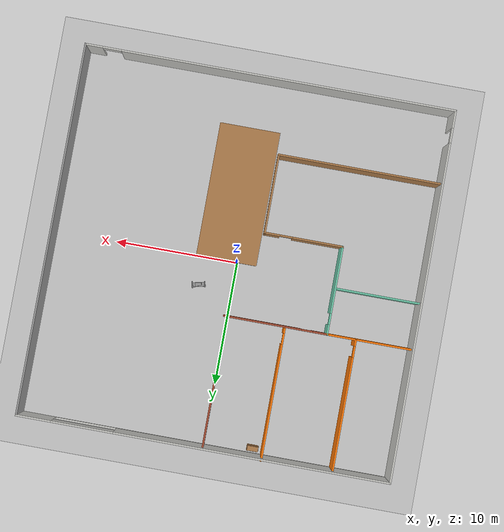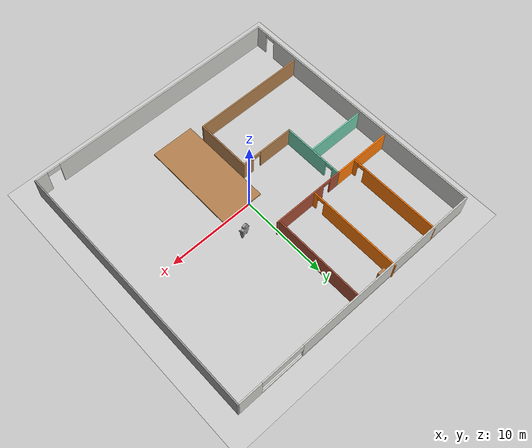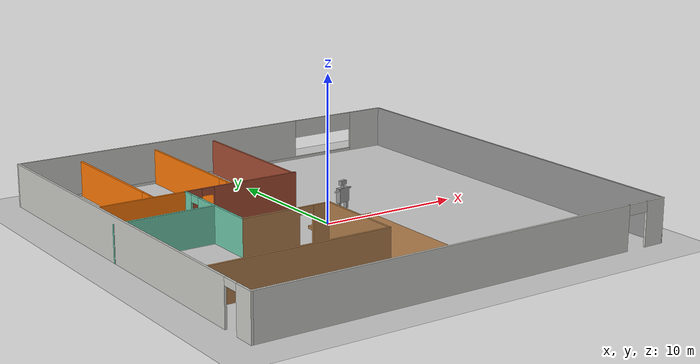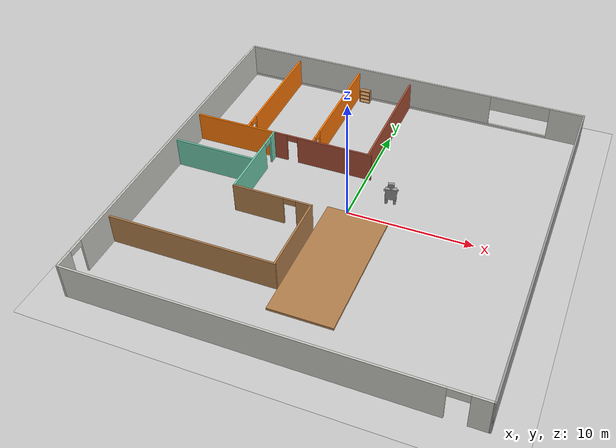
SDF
<sdf version="1.7">
 <world name="default">
  <model name="ground_plane">
   <static>1</static>
   <link name="link">
    <collision name="collision">
     <geometry><plane><normal>0 0 1</normal><size>100 100</size></plane></geometry>
     <surface>
      <contact><collide_bitmask>65535</collide_bitmask></contact>
      <friction><ode><mu>100</mu><mu2>50</mu2></ode></friction>
     </surface>
    </collision>
    <visual name="visual">
     <cast_shadows>0</cast_shadows>
     <geometry><plane><normal>0 0 1</normal><size>100 100</size></plane></geometry>
     <material>
      <script><uri>file://media/materials/scripts/gazebo.material</uri><name>Gazebo/Grey</name></script>
     </material>
    </visual>
   </link>
  </model>
  <model name="7F-2">
   <pose>-0.013384 0.0558 0 0 -0 0</pose>
   <link name="Wall_0">
    <pose>0.013384 -15.0558 0 0 -0 0</pose>
    <visual name="Wall_0_Visual_0">
     <pose>-1.49327 0 1.5 0 -0 0</pose>
     <geometry><box><size>27.1635 0.15 3</size></box></geometry>
     <material>
      <script><uri>file://media/materials/scripts/gazebo.material</uri><name>Gazebo/CeilingTiled</name></script>
      <ambient>1 1 1 1</ambient>
     </material>
     <meta><layer>0</layer></meta>
    </visual>
    <collision name="Wall_0_Collision_0">
     <geometry><box><size>27.1635 0.15 3</size></box></geometry>
     <pose>-1.49327 0 1.5 0 -0 0</pose>
    </collision>
    <visual name="Wall_0_Visual_1">
     <pose>14.3317 0 1.5 0 -0 0</pose>
     <geometry><box><size>1.48654 0.15 3</size></box></geometry>
     <material>
      <script><uri>file://media/materials/scripts/gazebo.material</uri><name>Gazebo/CeilingTiled</name></script>
      <ambient>1 1 1 1</ambient>
     </material>
     <meta><layer>0</layer></meta>
    </visual>
    <collision name="Wall_0_Collision_1">
     <geometry><box><size>1.48654 0.15 3</size></box></geometry>
     <pose>14.3317 0 1.5 0 -0 0</pose>
    </collision>
    <visual name="Wall_0_Visual_2">
     <pose>12.8385 0 2.65 0 -0 0</pose>
     <geometry><box><size>1.5 0.15 0.7</size></box></geometry>
     <material>
      <script><uri>file://media/materials/scripts/gazebo.material</uri><name>Gazebo/CeilingTiled</name></script>
      <ambient>1 1 1 1</ambient>
     </material>
     <meta><layer>0</layer></meta>
    </visual>
    <collision name="Wall_0_Collision_2">
     <geometry><box><size>1.5 0.15 0.7</size></box></geometry>
     <pose>12.8385 0 2.65 0 -0 0</pose>
    </collision>
   </link>
   <link name="Wall_11">
    <pose>-4.68425 9.7558 0 0 -0 -1.5708</pose>
    <visual name="Wall_11_Visual_0">
     <pose>-0.674266 0 1.25 0 -0 0</pose>
     <geometry><box><size>9.40147 0.15 2.5</size></box></geometry>
     <material>
      <script><uri>file://media/materials/scripts/gazebo.material</uri><name>Gazebo/Grey</name></script>
      <ambient>0.996078 0.47451 0.0196078 1</ambient>
     </material>
     <meta><layer>0</layer></meta>
    </visual>
    <collision name="Wall_11_Collision_0">
     <geometry><box><size>9.40147 0.15 2.5</size></box></geometry>
     <pose>-0.674266 0 1.25 0 -0 0</pose>
    </collision>
    <visual name="Wall_11_Visual_1">
     <pose>5.15073 0 1.25 0 -0 0</pose>
     <geometry><box><size>0.448532 0.15 2.5</size></box></geometry>
     <material>
      <script><uri>file://media/materials/scripts/gazebo.material</uri><name>Gazebo/Grey</name></script>
      <ambient>0.996078 0.47451 0.0196078 1</ambient>
     </material>
     <meta><layer>0</layer></meta>
    </visual>
    <collision name="Wall_11_Collision_1">
     <geometry><box><size>0.448532 0.15 2.5</size></box></geometry>
     <pose>5.15073 0 1.25 0 -0 0</pose>
    </collision>
    <visual name="Wall_11_Visual_2">
     <pose>4.47647 0 2.25 0 -0 0</pose>
     <geometry><box><size>0.9 0.15 0.5</size></box></geometry>
     <material>
      <script><uri>file://media/materials/scripts/gazebo.material</uri><name>Gazebo/Grey</name></script>
      <ambient>0.996078 0.47451 0.0196078 1</ambient>
     </material>
     <meta><layer>0</layer></meta>
    </visual>
    <collision name="Wall_11_Collision_2">
     <geometry><box><size>0.9 0.15 0.5</size></box></geometry>
     <pose>4.47647 0 2.25 0 -0 0</pose>
    </collision>
   </link>
   <link name="Wall_13">
    <pose>-10.409 9.6488 0 0 -0 -1.5708</pose>
    <visual name="Wall_13_Visual_0">
     <pose>-0.727769 0 1.25 0 -0 0</pose>
     <geometry><box><size>9.29446 0.15 2.5</size></box></geometry>
     <material>
      <script><uri>file://media/materials/scripts/gazebo.material</uri><name>Gazebo/Grey</name></script>
      <ambient>0.996078 0.47451 0.0196078 1</ambient>
     </material>
     <meta><layer>0</layer></meta>
    </visual>
    <collision name="Wall_13_Collision_0">
     <geometry><box><size>9.29446 0.15 2.5</size></box></geometry>
     <pose>-0.727769 0 1.25 0 -0 0</pose>
    </collision>
    <visual name="Wall_13_Visual_1">
     <pose>5.09723 0 1.25 0 -0 0</pose>
     <geometry><box><size>0.555538 0.15 2.5</size></box></geometry>
     <material>
      <script><uri>file://media/materials/scripts/gazebo.material</uri><name>Gazebo/Grey</name></script>
      <ambient>0.996078 0.47451 0.0196078 1</ambient>
     </material>
     <meta><layer>0</layer></meta>
    </visual>
    <collision name="Wall_13_Collision_1">
     <geometry><box><size>0.555538 0.15 2.5</size></box></geometry>
     <pose>5.09723 0 1.25 0 -0 0</pose>
    </collision>
    <visual name="Wall_13_Visual_2">
     <pose>4.36946 0 2.25 0 -0 0</pose>
     <geometry><box><size>0.9 0.15 0.5</size></box></geometry>
     <material>
      <script><uri>file://media/materials/scripts/gazebo.material</uri><name>Gazebo/Grey</name></script>
      <ambient>0.996078 0.47451 0.0196078 1</ambient>
     </material>
     <meta><layer>0</layer></meta>
    </visual>
    <collision name="Wall_13_Collision_2">
     <geometry><box><size>0.9 0.15 0.5</size></box></geometry>
     <pose>4.36946 0 2.25 0 -0 0</pose>
    </collision>
   </link>
   <link name="Wall_15">
    <pose>-8.07841 0.751801 0 0 -0 -1.5708</pose>
    <visual name="Wall_15_Visual_0">
     <pose>-3.18481 0 1.25 0 -0 0</pose>
     <geometry><box><size>0.880378 0.15 2.5</size></box></geometry>
     <material>
      <script><uri>file://media/materials/scripts/gazebo.material</uri><name>Gazebo/Grey</name></script>
      <ambient>0.435294 0.796078 0.67451 1</ambient>
     </material>
     <meta><layer>0</layer></meta>
    </visual>
    <collision name="Wall_15_Collision_0">
     <geometry><box><size>0.880378 0.15 2.5</size></box></geometry>
     <pose>-3.18481 0 1.25 0 -0 0</pose>
    </collision>
    <visual name="Wall_15_Visual_1">
     <pose>0.890189 0 1.25 0 -0 0</pose>
     <geometry><box><size>5.46962 0.15 2.5</size></box></geometry>
     <material>
      <script><uri>file://media/materials/scripts/gazebo.material</uri><name>Gazebo/Grey</name></script>
      <ambient>0.435294 0.796078 0.67451 1</ambient>
     </material>
     <meta><layer>0</layer></meta>
    </visual>
    <collision name="Wall_15_Collision_1">
     <geometry><box><size>5.46962 0.15 2.5</size></box></geometry>
     <pose>0.890189 0 1.25 0 -0 0</pose>
    </collision>
    <visual name="Wall_15_Visual_2">
     <pose>-2.29462 0 2.25 0 -0 0</pose>
     <geometry><box><size>0.9 0.15 0.5</size></box></geometry>
     <material>
      <script><uri>file://media/materials/scripts/gazebo.material</uri><name>Gazebo/Grey</name></script>
      <ambient>0.435294 0.796078 0.67451 1</ambient>
     </material>
     <meta><layer>0</layer></meta>
    </visual>
    <collision name="Wall_15_Collision_2">
     <geometry><box><size>0.9 0.15 0.5</size></box></geometry>
     <pose>-2.29462 0 2.25 0 -0 0</pose>
    </collision>
   </link>
   <link name="Wall_18">
    <pose>-4.91841 -2.7982 0 0 -0 0</pose>
    <visual name="Wall_18_Visual_0">
     <pose>-1.15754 0 1.25 0 -0 0</pose>
     <geometry><box><size>4.15493 0.15 2.5</size></box></geometry>
     <material>
      <script><uri>file://media/materials/scripts/gazebo.material</uri><name>Gazebo/Wood</name></script>
      <ambient>0.435294 0.796078 0.67451 1</ambient>
     </material>
     <meta><layer>0</layer></meta>
    </visual>
    <collision name="Wall_18_Collision_0">
     <geometry><box><size>4.15493 0.15 2.5</size></box></geometry>
     <pose>-1.15754 0 1.25 0 -0 0</pose>
    </collision>
    <visual name="Wall_18_Visual_1">
     <pose>2.57746 0 1.25 0 -0 0</pose>
     <geometry><box><size>1.31507 0.15 2.5</size></box></geometry>
     <material>
      <script><uri>file://media/materials/scripts/gazebo.material</uri><name>Gazebo/Wood</name></script>
      <ambient>0.435294 0.796078 0.67451 1</ambient>
     </material>
     <meta><layer>0</layer></meta>
    </visual>
    <collision name="Wall_18_Collision_1">
     <geometry><box><size>1.31507 0.15 2.5</size></box></geometry>
     <pose>2.57746 0 1.25 0 -0 0</pose>
    </collision>
    <visual name="Wall_18_Visual_2">
     <pose>1.41993 0 2.25 0 -0 0</pose>
     <geometry><box><size>1 0.15 0.5</size></box></geometry>
     <material>
      <script><uri>file://media/materials/scripts/gazebo.material</uri><name>Gazebo/Wood</name></script>
      <ambient>0.435294 0.796078 0.67451 1</ambient>
     </material>
     <meta><layer>0</layer></meta>
    </visual>
    <collision name="Wall_18_Collision_2">
     <geometry><box><size>1 0.15 0.5</size></box></geometry>
     <pose>1.41993 0 2.25 0 -0 0</pose>
    </collision>
   </link>
   <link name="Wall_19">
    <collision name="Wall_19_Collision">
     <geometry><box><size>6.5 0.15 2.5</size></box></geometry>
     <pose>0 0 1.25 0 -0 0</pose>
    </collision>
    <visual name="Wall_19_Visual">
     <pose>0 0 1.25 0 -0 0</pose>
     <geometry><box><size>6.5 0.15 2.5</size></box></geometry>
     <material>
      <script><uri>file://media/materials/scripts/gazebo.material</uri><name>Gazebo/Wood</name></script>
      <ambient>0.203922 0.396078 0.643137 1</ambient>
     </material>
     <meta><layer>0</layer></meta>
    </visual>
    <pose>-1.75841 -5.9732 0 0 -0 -1.5708</pose>
   </link>
   <link name="Wall_2">
    <collision name="Wall_2_Collision">
     <geometry><box><size>30.15 0.15 3</size></box></geometry>
     <pose>0 0 1.5 0 -0 0</pose>
    </collision>
    <visual name="Wall_2_Visual">
     <pose>0 0 1.5 0 -0 0</pose>
     <geometry><box><size>30.15 0.15 3</size></box></geometry>
     <material>
      <script><uri>file://media/materials/scripts/gazebo.material</uri><name>Gazebo/Grey</name></script>
      <ambient>1 1 1 1</ambient>
     </material>
     <meta><layer>0</layer></meta>
    </visual>
    <pose>15.0134 -0.055802 0 0 -0 1.5708</pose>
   </link>
   <link name="Wall_20">
    <collision name="Wall_20_Collision">
     <geometry><box><size>13.25 0.15 2.5</size></box></geometry>
     <pose>0 0 1.25 0 -0 0</pose>
    </collision>
    <visual name="Wall_20_Visual">
     <pose>0 0 1.25 0 -0 0</pose>
     <geometry><box><size>13.25 0.15 2.5</size></box></geometry>
     <material>
      <script><uri>file://media/materials/scripts/gazebo.material</uri><name>Gazebo/Wood</name></script>
      <ambient>0.203922 0.396078 0.643137 1</ambient>
     </material>
     <meta><layer>0</layer></meta>
    </visual>
    <pose>-8.30841 -9.1482 0 0 -0 3.14159</pose>
   </link>
   <link name="Wall_24">
    <collision name="Wall_24_Collision">
     <geometry><box><size>7.03 0.15 2.5</size></box></geometry>
     <pose>0 0 1.25 0 -0 0</pose>
    </collision>
    <visual name="Wall_24_Visual">
     <pose>0 0 1.25 0 -0 0</pose>
     <geometry><box><size>7.03 0.15 2.5</size></box></geometry>
     <material>
      <script><uri>file://media/materials/scripts/gazebo.material</uri><name>Gazebo/Grey</name></script>
      <ambient>0.996078 0.47451 0.0196078 1</ambient>
     </material>
     <meta><layer>0</layer></meta>
    </visual>
    <pose>-11.5184 4.3018 0 0 -0 3.14159</pose>
   </link>
   <link name="Wall_26">
    <pose>-3.91341 4.3018 0 0 -0 0</pose>
    <visual name="Wall_26_Visual_0">
     <pose>-3.62084 0 1.25 0 -0 0</pose>
     <geometry><box><size>1.25833 0.15 2.5</size></box></geometry>
     <material>
      <script><uri>file://media/materials/scripts/gazebo.material</uri><name>Gazebo/Bricks</name></script>
      <ambient>1 1 1 1</ambient>
     </material>
     <meta><layer>0</layer></meta>
    </visual>
    <collision name="Wall_26_Collision_0">
     <geometry><box><size>1.25833 0.15 2.5</size></box></geometry>
     <pose>-3.62084 0 1.25 0 -0 0</pose>
    </collision>
    <visual name="Wall_26_Visual_1">
     <pose>1.07916 0 1.25 0 -0 0</pose>
     <geometry><box><size>6.34167 0.15 2.5</size></box></geometry>
     <material>
      <script><uri>file://media/materials/scripts/gazebo.material</uri><name>Gazebo/Bricks</name></script>
      <ambient>1 1 1 1</ambient>
     </material>
     <meta><layer>0</layer></meta>
    </visual>
    <collision name="Wall_26_Collision_1">
     <geometry><box><size>6.34167 0.15 2.5</size></box></geometry>
     <pose>1.07916 0 1.25 0 -0 0</pose>
    </collision>
    <visual name="Wall_26_Visual_2">
     <pose>-2.54167 0 2.25 0 -0 0</pose>
     <geometry><box><size>0.9 0.15 0.5</size></box></geometry>
     <material>
      <script><uri>file://media/materials/scripts/gazebo.material</uri><name>Gazebo/Bricks</name></script>
      <ambient>1 1 1 1</ambient>
     </material>
     <meta><layer>0</layer></meta>
    </visual>
    <collision name="Wall_26_Collision_2">
     <geometry><box><size>0.9 0.15 0.5</size></box></geometry>
     <pose>-2.54167 0 2.25 0 -0 0</pose>
    </collision>
   </link>
   <link name="Wall_30">
    <collision name="Wall_30_Collision">
     <geometry><box><size>7 0.15 2.5</size></box></geometry>
     <pose>0 0 1.25 0 -0 0</pose>
    </collision>
    <visual name="Wall_30_Visual">
     <pose>0 0 1.25 0 -0 0</pose>
     <geometry><box><size>7 0.15 2.5</size></box></geometry>
     <material>
      <script><uri>file://media/materials/scripts/gazebo.material</uri><name>Gazebo/Grey</name></script>
      <ambient>0.435294 0.796078 0.67451 1</ambient>
     </material>
     <meta><layer>0</layer></meta>
    </visual>
    <pose>-11.5884 0.576344 0 0 -0 0</pose>
   </link>
   <link name="Wall_35">
    <collision name="Wall_35_Collision">
     <geometry><box><size>11.1 5 0.2</size></box></geometry>
     <pose>0 0 0.1 0 -0 0</pose>
    </collision>
    <visual name="Wall_35_Visual">
     <pose>0 0 0.1 0 -0 0</pose>
     <geometry><box><size>11.1 5 0.2</size></box></geometry>
     <material>
      <script><uri>file://media/materials/scripts/gazebo.material</uri><name>Gazebo/Wood</name></script>
      <ambient>1 1 1 1</ambient>
     </material>
     <meta><layer>0</layer></meta>
    </visual>
    <pose>0.909882 -5.6625 0 0 -0 -1.5708</pose>
   </link>
   <link name="Wall_4">
    <pose>0.013384 14.9442 0 0 -0 3.14159</pose>
    <visual name="Wall_4_Visual_0">
     <pose>-13.6482 0 1.5 0 -0 0</pose>
     <geometry><box><size>2.85357 0.15 3</size></box></geometry>
     <material>
      <script><uri>file://media/materials/scripts/gazebo.material</uri><name>Gazebo/CeilingTiled</name></script>
      <ambient>1 1 1 1</ambient>
     </material>
     <meta><layer>0</layer></meta>
    </visual>
    <collision name="Wall_4_Collision_0">
     <geometry><box><size>2.85357 0.15 3</size></box></geometry>
     <pose>-13.6482 0 1.5 0 -0 0</pose>
    </collision>
    <visual name="Wall_4_Visual_1">
     <pose>1.42679 0 0.1 0 -0 0</pose>
     <geometry><box><size>27.2964 0.15 0.2</size></box></geometry>
     <material>
      <script><uri>file://media/materials/scripts/gazebo.material</uri><name>Gazebo/CeilingTiled</name></script>
      <ambient>1 1 1 1</ambient>
     </material>
     <meta><layer>0</layer></meta>
    </visual>
    <collision name="Wall_4_Collision_1">
     <geometry><box><size>27.2964 0.15 0.2</size></box></geometry>
     <pose>1.42679 0 0.1 0 -0 0</pose>
    </collision>
    <visual name="Wall_4_Visual_2">
     <pose>3.92679 0 1.6 0 -0 0</pose>
     <geometry><box><size>22.2964 0.15 2.8</size></box></geometry>
     <material>
      <script><uri>file://media/materials/scripts/gazebo.material</uri><name>Gazebo/CeilingTiled</name></script>
      <ambient>1 1 1 1</ambient>
     </material>
     <meta><layer>0</layer></meta>
    </visual>
    <collision name="Wall_4_Collision_2">
     <geometry><box><size>22.2964 0.15 2.8</size></box></geometry>
     <pose>3.92679 0 1.6 0 -0 0</pose>
    </collision>
    <visual name="Wall_4_Visual_3">
     <pose>-9.72143 0 2.35 0 -0 0</pose>
     <geometry><box><size>5 0.15 1.3</size></box></geometry>
     <material>
      <script><uri>file://media/materials/scripts/gazebo.material</uri><name>Gazebo/CeilingTiled</name></script>
      <ambient>1 1 1 1</ambient>
     </material>
     <meta><layer>0</layer></meta>
    </visual>
    <collision name="Wall_4_Collision_3">
     <geometry><box><size>5 0.15 1.3</size></box></geometry>
     <pose>-9.72143 0 2.35 0 -0 0</pose>
    </collision>
   </link>
   <link name="Wall_6">
    <pose>-14.9866 -0.055802 0 0 -0 -1.5708</pose>
    <visual name="Wall_6_Visual_0">
     <pose>-1.34384 0 1.5 0 -0 0</pose>
     <geometry><box><size>27.4623 0.15 3</size></box></geometry>
     <material>
      <script><uri>file://media/materials/scripts/gazebo.material</uri><name>Gazebo/CeilingTiled</name></script>
      <ambient>1 1 1 1</ambient>
     </material>
     <meta><layer>0</layer></meta>
    </visual>
    <collision name="Wall_6_Collision_0">
     <geometry><box><size>27.4623 0.15 3</size></box></geometry>
     <pose>-1.34384 0 1.5 0 -0 0</pose>
    </collision>
    <visual name="Wall_6_Visual_1">
     <pose>14.3312 0 1.5 0 -0 0</pose>
     <geometry><box><size>1.48768 0.15 3</size></box></geometry>
     <material>
      <script><uri>file://media/materials/scripts/gazebo.material</uri><name>Gazebo/CeilingTiled</name></script>
      <ambient>1 1 1 1</ambient>
     </material>
     <meta><layer>0</layer></meta>
    </visual>
    <collision name="Wall_6_Collision_1">
     <geometry><box><size>1.48768 0.15 3</size></box></geometry>
     <pose>14.3312 0 1.5 0 -0 0</pose>
    </collision>
    <visual name="Wall_6_Visual_2">
     <pose>12.9873 0 2.75 0 -0 0</pose>
     <geometry><box><size>1.2 0.15 0.5</size></box></geometry>
     <material>
      <script><uri>file://media/materials/scripts/gazebo.material</uri><name>Gazebo/CeilingTiled</name></script>
      <ambient>1 1 1 1</ambient>
     </material>
     <meta><layer>0</layer></meta>
    </visual>
    <collision name="Wall_6_Collision_2">
     <geometry><box><size>1.2 0.15 0.5</size></box></geometry>
     <pose>12.9873 0 2.75 0 -0 0</pose>
    </collision>
   </link>
   <link name="Wall_8">
    <collision name="Wall_8_Collision">
     <geometry><box><size>10.75 0.15 2.5</size></box></geometry>
     <pose>0 0 1.25 0 -0 0</pose>
    </collision>
    <visual name="Wall_8_Visual">
     <pose>0 0 1.25 0 -0 0</pose>
     <geometry><box><size>10.75 0.15 2.5</size></box></geometry>
     <material>
      <script><uri>file://media/materials/scripts/gazebo.material</uri><name>Gazebo/Bricks</name></script>
      <ambient>1 1 1 1</ambient>
     </material>
     <meta><layer>0</layer></meta>
    </visual>
    <pose>0.064743 9.61919 0 0 -0 -1.5708</pose>
   </link>
   <static>1</static>
  </model>
  <model name="bookshelf">
   <static>1</static>
   <link name="link">
    <inertial><mass>1</mass></inertial>
    <collision name="back">
     <pose>0 0.005 0.6 0 -0 0</pose>
     <geometry><box><size>0.9 0.01 1.2</size></box></geometry>
    </collision>
    <visual name="visual1">
     <pose>0 0.005 0.6 0 -0 0</pose>
     <geometry><box><size>0.9 0.01 1.2</size></box></geometry>
     <material>
      <script><uri>file://media/materials/scripts/gazebo.material</uri><name>Gazebo/Wood</name></script>
     </material>
    </visual>
    <collision name="left_side">
     <pose>0.45 -0.195 0.6 0 -0 0</pose>
     <geometry><box><size>0.02 0.4 1.2</size></box></geometry>
    </collision>
    <visual name="visual2">
     <pose>0.45 -0.195 0.6 0 -0 0</pose>
     <geometry><box><size>0.02 0.4 1.2</size></box></geometry>
     <material>
      <script><uri>file://media/materials/scripts/gazebo.material</uri><name>Gazebo/Wood</name></script>
     </material>
    </visual>
    <collision name="right_side">
     <pose>-0.45 -0.195 0.6 0 -0 0</pose>
     <geometry><box><size>0.02 0.4 1.2</size></box></geometry>
    </collision>
    <visual name="visual3">
     <pose>-0.45 -0.195 0.6 0 -0 0</pose>
     <geometry><box><size>0.02 0.4 1.2</size></box></geometry>
     <material>
      <script><uri>file://media/materials/scripts/gazebo.material</uri><name>Gazebo/Wood</name></script>
     </material>
    </visual>
    <collision name="bottom">
     <pose>0 -0.195 0.03 0 -0 0</pose>
     <geometry><box><size>0.88 0.4 0.06</size></box></geometry>
    </collision>
    <visual name="visual4">
     <pose>0 -0.195 0.03 0 -0 0</pose>
     <geometry><box><size>0.88 0.4 0.06</size></box></geometry>
     <material>
      <script><uri>file://media/materials/scripts/gazebo.material</uri><name>Gazebo/Wood</name></script>
     </material>
    </visual>
    <collision name="top">
     <pose>0 -0.195 1.19 0 -0 0</pose>
     <geometry><box><size>0.88 0.4 0.02</size></box></geometry>
    </collision>
    <visual name="visual5">
     <pose>0 -0.195 1.19 0 -0 0</pose>
     <geometry><box><size>0.88 0.4 0.02</size></box></geometry>
     <material>
      <script><uri>file://media/materials/scripts/gazebo.material</uri><name>Gazebo/Wood</name></script>
     </material>
    </visual>
    <collision name="low_shelf">
     <pose>0 -0.195 0.43 0 -0 0</pose>
     <geometry><box><size>0.88 0.4 0.02</size></box></geometry>
    </collision>
    <visual name="visual6">
     <pose>0 -0.195 0.43 0 -0 0</pose>
     <geometry><box><size>0.88 0.4 0.02</size></box></geometry>
     <material>
      <script><uri>file://media/materials/scripts/gazebo.material</uri><name>Gazebo/Wood</name></script>
     </material>
    </visual>
    <collision name="high_shelf">
     <pose>0 -0.195 0.8 0 -0 0</pose>
     <geometry><box><size>0.88 0.4 0.02</size></box></geometry>
    </collision>
    <visual name="visual7">
     <pose>0 -0.195 0.8 0 -0 0</pose>
     <geometry><box><size>0.88 0.4 0.02</size></box></geometry>
     <material>
      <script><uri>file://media/materials/scripts/gazebo.material</uri><name>Gazebo/Wood</name></script>
     </material>
    </visual>
   </link>
   <pose>-3.91019 14.6697 0 0 -0 0</pose>
  </model>
  <model name="interacting_robot">
   <link name="link_1">
    <inertial>
     <mass>1</mass>
     <inertia>
      <ixx>0.166667</ixx>
      <ixy>0</ixy>
      <ixz>0</ixz>
      <iyy>0.166667</iyy>
      <iyz>0</iyz>
      <izz>0.166667</izz>
     </inertia>
    </inertial>
    <visual name="visual">
     <pose>0 0 0.5 0 -0 0</pose>
     <geometry><box><size>0.9 0.35 1</size></box></geometry>
     <material>
      <lighting>1</lighting>
      <script><uri>file://media/materials/scripts/gazebo.material</uri><name>Gazebo/Grey</name></script>
      <shader type="pixel"><normal_map>__default__</normal_map></shader>
      <ambient>0.3 0.3 0.3 1</ambient>
      <diffuse>0.7 0.7 0.7 1</diffuse>
      <specular>0.01 0.01 0.01 1</specular>
      <emissive>0 0 0 1</emissive>
     </material>
    </visual>
    <collision name="collision">
     <geometry><box><size>0.9 0.35 1</size></box></geometry>
     <surface>
      <friction>
       <ode><mu>1</mu><mu2>1</mu2><fdir1>0 0 0</fdir1><slip1>0</slip1><slip2>0</slip2></ode>
       <torsional>
        <coefficient>1</coefficient>
        <patch_radius>0</patch_radius>
        <surface_radius>0</surface_radius>
        <use_patch_radius>1</use_patch_radius>
        <ode><slip>0</slip></ode>
       </torsional>
      </friction>
      <bounce><restitution_coefficient>0</restitution_coefficient><threshold>1e+06</threshold></bounce>
      <contact>
       <collide_without_contact>0</collide_without_contact>
       <collide_without_contact_bitmask>1</collide_without_contact_bitmask>
       <collide_bitmask>1</collide_bitmask>
       <ode>
        <soft_cfm>0</soft_cfm>
        <soft_erp>0.2</soft_erp>
        <kp>1e+13</kp>
        <kd>1</kd>
        <max_vel>0.01</max_vel>
        <min_depth>0</min_depth>
       </ode>
       <bullet>
        <split_impulse>1</split_impulse>
        <split_impulse_penetration_threshold>-0.01</split_impulse_penetration_threshold>
        <soft_cfm>0</soft_cfm>
        <soft_erp>0.2</soft_erp>
        <kp>1e+13</kp>
        <kd>1</kd>
       </bullet>
      </contact>
     </surface>
    </collision>
   </link>
   <link name="link_0">
    <inertial>
     <mass>1</mass>
     <inertia><ixx>0.145833</ixx><ixy>0</ixy><ixz>0</ixz><iyy>0.145833</iyy><iyz>0</iyz><izz>0.125</izz></inertia>
    </inertial>
    <pose>0 0 1.1 0 -0 2e-06</pose>
    <visual name="visual">
     <geometry><cylinder><radius>0.12</radius><length>0.2</length></cylinder></geometry>
     <material>
      <lighting>1</lighting>
      <script><uri>file://media/materials/scripts/gazebo.material</uri><name>Gazebo/Grey</name></script>
      <shader type="pixel"><normal_map>__default__</normal_map></shader>
      <ambient>0.3 0.3 0.3 1</ambient>
      <diffuse>0.7 0.7 0.7 1</diffuse>
      <specular>0.01 0.01 0.01 1</specular>
      <emissive>0 0 0 1</emissive>
     </material>
    </visual>
    <collision name="collision">
     <geometry><cylinder><radius>0.12</radius><length>0.2</length></cylinder></geometry>
     <surface>
      <friction>
       <ode><mu>1</mu><mu2>1</mu2><fdir1>0 0 0</fdir1><slip1>0</slip1><slip2>0</slip2></ode>
       <torsional>
        <coefficient>1</coefficient>
        <patch_radius>0</patch_radius>
        <surface_radius>0</surface_radius>
        <use_patch_radius>1</use_patch_radius>
        <ode><slip>0</slip></ode>
       </torsional>
      </friction>
      <bounce><restitution_coefficient>0</restitution_coefficient><threshold>1e+06</threshold></bounce>
      <contact>
       <collide_without_contact>0</collide_without_contact>
       <collide_without_contact_bitmask>1</collide_without_contact_bitmask>
       <collide_bitmask>1</collide_bitmask>
       <ode>
        <soft_cfm>0</soft_cfm>
        <soft_erp>0.2</soft_erp>
        <kp>1e+13</kp>
        <kd>1</kd>
        <max_vel>0.01</max_vel>
        <min_depth>0</min_depth>
       </ode>
       <bullet>
        <split_impulse>1</split_impulse>
        <split_impulse_penetration_threshold>-0.01</split_impulse_penetration_threshold>
        <soft_cfm>0</soft_cfm>
        <soft_erp>0.2</soft_erp>
        <kp>1e+13</kp>
        <kd>1</kd>
       </bullet>
      </contact>
     </surface>
    </collision>
   </link>
   <link name="link_1_0">
    <inertial>
     <mass>1</mass>
     <inertia>
      <ixx>0.166667</ixx>
      <ixy>0</ixy>
      <ixz>0</ixz>
      <iyy>0.166667</iyy>
      <iyz>0</iyz>
      <izz>0.166667</izz>
     </inertia>
    </inertial>
    <pose>0 0 1.35 0 -0 0</pose>
    <visual name="visual">
     <geometry><box><size>0.5 0.25 0.3</size></box></geometry>
     <material>
      <lighting>1</lighting>
      <script><uri>file://media/materials/scripts/gazebo.material</uri><name>Gazebo/Grey</name></script>
      <shader type="pixel"><normal_map>__default__</normal_map></shader>
      <ambient>0.3 0.3 0.3 1</ambient>
      <diffuse>0.7 0.7 0.7 1</diffuse>
      <specular>0.01 0.01 0.01 1</specular>
      <emissive>0 0 0 1</emissive>
     </material>
    </visual>
    <collision name="collision">
     <geometry><box><size>0.5 0.25 0.3</size></box></geometry>
     <surface>
      <friction>
       <ode><mu>1</mu><mu2>1</mu2><fdir1>0 0 0</fdir1><slip1>0</slip1><slip2>0</slip2></ode>
       <torsional>
        <coefficient>1</coefficient>
        <patch_radius>0</patch_radius>
        <surface_radius>0</surface_radius>
        <use_patch_radius>1</use_patch_radius>
        <ode><slip>0</slip></ode>
       </torsional>
      </friction>
      <bounce><restitution_coefficient>0</restitution_coefficient><threshold>1e+06</threshold></bounce>
      <contact>
       <collide_without_contact>0</collide_without_contact>
       <collide_without_contact_bitmask>1</collide_without_contact_bitmask>
       <collide_bitmask>1</collide_bitmask>
       <ode>
        <soft_cfm>0</soft_cfm>
        <soft_erp>0.2</soft_erp>
        <kp>1e+13</kp>
        <kd>1</kd>
        <max_vel>0.01</max_vel>
        <min_depth>0</min_depth>
       </ode>
       <bullet>
        <split_impulse>1</split_impulse>
        <split_impulse_penetration_threshold>-0.01</split_impulse_penetration_threshold>
        <soft_cfm>0</soft_cfm>
        <soft_erp>0.2</soft_erp>
        <kp>1e+13</kp>
        <kd>1</kd>
       </bullet>
      </contact>
     </surface>
    </collision>
   </link>
   <link name="link_2">
    <inertial>
     <mass>1</mass>
     <inertia>
      <ixx>0.166667</ixx>
      <ixy>0</ixy>
      <ixz>0</ixz>
      <iyy>0.166667</iyy>
      <iyz>0</iyz>
      <izz>0.166667</izz>
     </inertia>
    </inertial>
    <pose>0.5 0 0.83143 -0.02 0 0</pose>
    <visual name="visual">
     <pose>0 0 0 -0.5 0 0</pose>
     <geometry><box><size>0.1 0.6 0.1</size></box></geometry>
     <material>
      <lighting>1</lighting>
      <script><uri>file://media/materials/scripts/gazebo.material</uri><name>Gazebo/Grey</name></script>
      <shader type="pixel"><normal_map>__default__</normal_map></shader>
      <ambient>0.3 0.3 0.3 1</ambient>
      <diffuse>0.7 0.7 0.7 1</diffuse>
      <specular>0.01 0.01 0.01 1</specular>
      <emissive>0 0 0 1</emissive>
     </material>
    </visual>
    <collision name="collision">
     <pose>0 0 0 -0.5 0 0</pose>
     <geometry><box><size>0.1 0.6 0.1</size></box></geometry>
     <surface>
      <friction>
       <ode><mu>1</mu><mu2>1</mu2><fdir1>0 0 0</fdir1><slip1>0</slip1><slip2>0</slip2></ode>
       <torsional>
        <coefficient>1</coefficient>
        <patch_radius>0</patch_radius>
        <surface_radius>0</surface_radius>
        <use_patch_radius>1</use_patch_radius>
        <ode><slip>0</slip></ode>
       </torsional>
      </friction>
      <bounce><restitution_coefficient>0</restitution_coefficient><threshold>1e+06</threshold></bounce>
      <contact>
       <collide_without_contact>0</collide_without_contact>
       <collide_without_contact_bitmask>1</collide_without_contact_bitmask>
       <collide_bitmask>1</collide_bitmask>
       <ode>
        <soft_cfm>0</soft_cfm>
        <soft_erp>0.2</soft_erp>
        <kp>1e+13</kp>
        <kd>1</kd>
        <max_vel>0.01</max_vel>
        <min_depth>0</min_depth>
       </ode>
       <bullet>
        <split_impulse>1</split_impulse>
        <split_impulse_penetration_threshold>-0.01</split_impulse_penetration_threshold>
        <soft_cfm>0</soft_cfm>
        <soft_erp>0.2</soft_erp>
        <kp>1e+13</kp>
        <kd>1</kd>
       </bullet>
      </contact>
     </surface>
    </collision>
   </link>
   <link name="link_2_clone_0">
    <inertial>
     <mass>1</mass>
     <inertia>
      <ixx>0.166667</ixx>
      <ixy>0</ixy>
      <ixz>0</ixz>
      <iyy>0.166667</iyy>
      <iyz>0</iyz>
      <izz>0.166667</izz>
     </inertia>
    </inertial>
    <pose>-0.5 0 0.83143 -0.02 0 0</pose>
    <visual name="visual">
     <pose>0 0 0 -0.5 0 0</pose>
     <geometry><box><size>0.1 0.5 0.1</size></box></geometry>
     <material>
      <lighting>1</lighting>
      <script><uri>file://media/materials/scripts/gazebo.material</uri><name>Gazebo/Grey</name></script>
      <shader type="pixel"><normal_map>__default__</normal_map></shader>
      <ambient>0.3 0.3 0.3 1</ambient>
      <diffuse>0.7 0.7 0.7 1</diffuse>
      <specular>0.01 0.01 0.01 1</specular>
      <emissive>0 0 0 1</emissive>
     </material>
    </visual>
    <collision name="collision">
     <pose>0 0 0 -0.5 0 0</pose>
     <geometry><box><size>0.1 0.5 0.1</size></box></geometry>
     <surface>
      <friction>
       <ode><mu>1</mu><mu2>1</mu2><fdir1>0 0 0</fdir1><slip1>0</slip1><slip2>0</slip2></ode>
       <torsional>
        <coefficient>1</coefficient>
        <patch_radius>0</patch_radius>
        <surface_radius>0</surface_radius>
        <use_patch_radius>1</use_patch_radius>
        <ode><slip>0</slip></ode>
       </torsional>
      </friction>
      <bounce><restitution_coefficient>0</restitution_coefficient><threshold>1e+06</threshold></bounce>
      <contact>
       <collide_without_contact>0</collide_without_contact>
       <collide_without_contact_bitmask>1</collide_without_contact_bitmask>
       <collide_bitmask>1</collide_bitmask>
       <ode>
        <soft_cfm>0</soft_cfm>
        <soft_erp>0.2</soft_erp>
        <kp>1e+13</kp>
        <kd>1</kd>
        <max_vel>0.01</max_vel>
        <min_depth>0</min_depth>
       </ode>
       <bullet>
        <split_impulse>1</split_impulse>
        <split_impulse_penetration_threshold>-0.01</split_impulse_penetration_threshold>
        <soft_cfm>0</soft_cfm>
        <soft_erp>0.2</soft_erp>
        <kp>1e+13</kp>
        <kd>1</kd>
       </bullet>
      </contact>
     </surface>
    </collision>
   </link>
   <link name="link_4">
    <inertial>
     <mass>1</mass>
     <inertia>
      <ixx>0.166667</ixx>
      <ixy>0</ixy>
      <ixz>0</ixz>
      <iyy>0.166667</iyy>
      <iyz>0</iyz>
      <izz>0.166667</izz>
     </inertia>
    </inertial>
    <pose>0.31 -0.02 -0.257 0 -0 0</pose>
    <visual name="visual">
     <geometry><box><size>0.2 0.2 0.5</size></box></geometry>
     <material>
      <lighting>1</lighting>
      <script><uri>file://media/materials/scripts/gazebo.material</uri><name>Gazebo/Grey</name></script>
      <shader type="pixel"><normal_map>__default__</normal_map></shader>
      <ambient>0.3 0.3 0.3 1</ambient>
      <diffuse>0.7 0.7 0.7 1</diffuse>
      <specular>0.01 0.01 0.01 1</specular>
      <emissive>0 0 0 1</emissive>
     </material>
    </visual>
    <collision name="collision">
     <geometry><box><size>0.2 0.2 0.5</size></box></geometry>
     <surface>
      <friction>
       <ode><mu>1</mu><mu2>1</mu2><fdir1>0 0 0</fdir1><slip1>0</slip1><slip2>0</slip2></ode>
       <torsional>
        <coefficient>1</coefficient>
        <patch_radius>0</patch_radius>
        <surface_radius>0</surface_radius>
        <use_patch_radius>1</use_patch_radius>
        <ode><slip>0</slip></ode>
       </torsional>
      </friction>
      <bounce><restitution_coefficient>0</restitution_coefficient><threshold>1e+06</threshold></bounce>
      <contact>
       <collide_without_contact>0</collide_without_contact>
       <collide_without_contact_bitmask>1</collide_without_contact_bitmask>
       <collide_bitmask>1</collide_bitmask>
       <ode>
        <soft_cfm>0</soft_cfm>
        <soft_erp>0.2</soft_erp>
        <kp>1e+13</kp>
        <kd>1</kd>
        <max_vel>0.01</max_vel>
        <min_depth>0</min_depth>
       </ode>
       <bullet>
        <split_impulse>1</split_impulse>
        <split_impulse_penetration_threshold>-0.01</split_impulse_penetration_threshold>
        <soft_cfm>0</soft_cfm>
        <soft_erp>0.2</soft_erp>
        <kp>1e+13</kp>
        <kd>1</kd>
       </bullet>
      </contact>
     </surface>
    </collision>
   </link>
   <link name="link_4_clone">
    <inertial>
     <mass>1</mass>
     <inertia>
      <ixx>0.166667</ixx>
      <ixy>0</ixy>
      <ixz>0</ixz>
      <iyy>0.166667</iyy>
      <iyz>0</iyz>
      <izz>0.166667</izz>
     </inertia>
    </inertial>
    <pose>-0.35 0 -0.257 0 -0 0</pose>
    <visual name="visual">
     <geometry><box><size>0.2 0.2 0.5</size></box></geometry>
     <material>
      <lighting>1</lighting>
      <script><uri>file://media/materials/scripts/gazebo.material</uri><name>Gazebo/Grey</name></script>
      <shader type="pixel"><normal_map>__default__</normal_map></shader>
      <ambient>0.3 0.3 0.3 1</ambient>
      <diffuse>0.7 0.7 0.7 1</diffuse>
      <specular>0.01 0.01 0.01 1</specular>
      <emissive>0 0 0 1</emissive>
     </material>
    </visual>
    <collision name="collision">
     <geometry><box><size>0.2 0.2 0.5</size></box></geometry>
     <surface>
      <friction>
       <ode><mu>1</mu><mu2>1</mu2><fdir1>0 0 0</fdir1><slip1>0</slip1><slip2>0</slip2></ode>
       <torsional>
        <coefficient>1</coefficient>
        <patch_radius>0</patch_radius>
        <surface_radius>0</surface_radius>
        <use_patch_radius>1</use_patch_radius>
        <ode><slip>0</slip></ode>
       </torsional>
      </friction>
      <bounce><restitution_coefficient>0</restitution_coefficient><threshold>1e+06</threshold></bounce>
      <contact>
       <collide_without_contact>0</collide_without_contact>
       <collide_without_contact_bitmask>1</collide_without_contact_bitmask>
       <collide_bitmask>1</collide_bitmask>
       <ode>
        <soft_cfm>0</soft_cfm>
        <soft_erp>0.2</soft_erp>
        <kp>1e+13</kp>
        <kd>1</kd>
        <max_vel>0.01</max_vel>
        <min_depth>0</min_depth>
       </ode>
       <bullet>
        <split_impulse>1</split_impulse>
        <split_impulse_penetration_threshold>-0.01</split_impulse_penetration_threshold>
        <soft_cfm>0</soft_cfm>
        <soft_erp>0.2</soft_erp>
        <kp>1e+13</kp>
        <kd>1</kd>
       </bullet>
      </contact>
     </surface>
    </collision>
   </link>
   <joint name="link_0_JOINT_2" type="fixed">
    <parent>link_0</parent>
    <child>link_1_0</child>
    <physics>
     <ode><limit><cfm>0</cfm><erp>0.2</erp></limit><suspension><cfm>0</cfm><erp>0.2</erp></suspension></ode>
    </physics>
   </joint>
   <joint name="link_1_JOINT_0" type="revolute">
    <parent>link_1</parent>
    <child>link_0</child>
    <axis>
     <xyz>0 0 1</xyz>
     <limit>
      <lower>-1.79769e+308</lower>
      <upper>1.79769e+308</upper>
      <effort>-1</effort>
      <velocity>-1</velocity>
     </limit>
     <dynamics>
      <spring_reference>0</spring_reference>
      <spring_stiffness>0</spring_stiffness>
      <damping>0</damping>
      <friction>0</friction>
     </dynamics>
    </axis>
    <physics>
     <ode><limit><cfm>0</cfm><erp>0.2</erp></limit><suspension><cfm>0</cfm><erp>0.2</erp></suspension></ode>
    </physics>
   </joint>
   <joint name="link_1_JOINT_3" type="revolute">
    <parent>link_1</parent>
    <child>link_2</child>
    <axis>
     <xyz>1 0 0</xyz>
     <limit>
      <lower>-1.79769e+308</lower>
      <upper>1.79769e+308</upper>
      <effort>-1</effort>
      <velocity>-1</velocity>
     </limit>
     <dynamics>
      <spring_reference>0</spring_reference>
      <spring_stiffness>0</spring_stiffness>
      <damping>0</damping>
      <friction>0</friction>
     </dynamics>
    </axis>
    <physics>
     <ode><limit><cfm>0</cfm><erp>0.2</erp></limit><suspension><cfm>0</cfm><erp>0.2</erp></suspension></ode>
    </physics>
   </joint>
   <joint name="link_1_JOINT_7" type="revolute">
    <parent>link_1</parent>
    <child>link_2_clone_0</child>
    <axis>
     <xyz>1 0 0</xyz>
     <limit>
      <lower>-1.79769e+308</lower>
      <upper>1.79769e+308</upper>
      <effort>-1</effort>
      <velocity>-1</velocity>
     </limit>
     <dynamics>
      <spring_reference>0</spring_reference>
      <spring_stiffness>0</spring_stiffness>
      <damping>0</damping>
      <friction>0</friction>
     </dynamics>
    </axis>
    <physics>
     <ode><limit><cfm>0</cfm><erp>0.2</erp></limit><suspension><cfm>0</cfm><erp>0.2</erp></suspension></ode>
    </physics>
   </joint>
   <joint name="link_1_JOINT_8" type="fixed">
    <parent>link_1</parent>
    <child>link_4</child>
    <physics>
     <ode><limit><cfm>0</cfm><erp>0.2</erp></limit><suspension><cfm>0</cfm><erp>0.2</erp></suspension></ode>
    </physics>
   </joint>
   <joint name="link_1_JOINT_9" type="fixed">
    <parent>link_1</parent>
    <child>link_4_clone</child>
    <physics>
     <ode><limit><cfm>0</cfm><erp>0.2</erp></limit><suspension><cfm>0</cfm><erp>0.2</erp></suspension></ode>
    </physics>
   </joint>
   <static>0</static>
   <pose>2.73138 2.25418 0.507 -7e-06 -2e-06 0.226414</pose>
  </model>
 </world>
</sdf>
